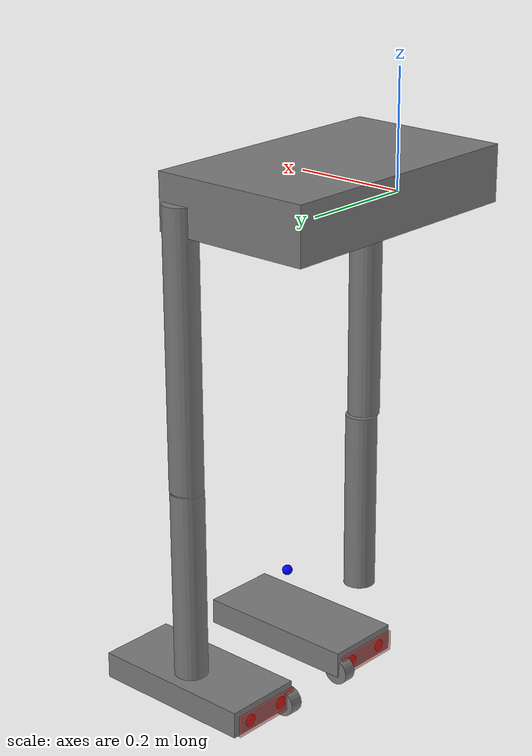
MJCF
<mujoco model="KF_NJIT_Rehab_Exo">
  <compiler angle="radian" meshdir="assets" autolimits="true"/>

  <default>
    <geom type="mesh" solimp="0.95 0.99 0.001" solref="0.005 1"/>
    <default class="visual">
      <geom group="1" type="mesh" contype="0" conaffinity="0" rgba="0.48 0.48 0.48 1"/>
    </default>
    <default class="collision">
      <geom group="0" type="box" rgba="0.8 0.2 0.2 0.5"/>
    </default>
  </default>

  <worldbody>
    <body name="base" pos="0 0 0">
      <freejoint name="root"/>

      <inertial pos="0 0 0" mass="0.01" fullinertia="1e-4 1e-4 1e-4 0 0 0"/>

      <body name="exo_pelvis" pos="0 0 0" euler="1.5707 0 0">
        <inertial pos="0.164969 -0.016465 -0.00031201" mass="3.40529" fullinertia="0.108005 0.140273 0.0409718 0.00342849 0.00011722 -6.056e-05"/>
        <geom type="box" size="0.15 0.05 0.25" pos="0.134969 -0.016465 -0.00031201" class="visual"/>

        <site name="imu" pos="0 0 0" euler="-1.5707 0 0" size="0.01" rgba="1 0 0 1"/>

        <body name="Battery" pos="0 0 0">
           <inertial pos="-0.0292753 0.0823604 -0.00041407" mass="2.2" fullinertia="0.00909547 0.00798838 0.00423978 -0.00038364 -7.94e-06 -3.83e-06"/>
        </body>

        <body name="r_exo_femur" pos="0.25 -0.06 0.21">
          <inertial pos="-0.00012287 -0.205637 0.0391034" mass="2.77725" fullinertia="0.0378701 0.00419727 0.0353309 7.8e-05 -0.00043864 -0.00038322"/>
          <joint name="r_exo_femur" axis="0 0 1" range="-1.309 1.309"/>
          <geom type="cylinder" size="0.03 0.25" pos="-0.00012287 -0.205637 0.0201034" euler="1.57 0 0" class="visual"/>

          <body name="r_exo_tibia" pos="0 -0.41 0">
            <inertial pos="0.00130324 -0.0640757 0.0163233" mass="0.60426" fullinertia="0.00549709 0.00033891 0.00532813 -4.48e-05 -6.27e-06 -0.00064841"/>
            <joint name="r_exo_tibia" axis="0 0 1" range="-2.094 0.0"/>
            <geom type="cylinder" size="0.03 0.175" pos="0.00130324 -0.2240757 0.0163233" euler="1.57 0 0" class="visual"/>

            <body name="r_shank_support" pos="0 -0.25 0">
              <inertial pos="-0.0220563 -0.0501763 -0.0332489" mass="0.24824" fullinertia="0.0009242 0.00070211 0.00054663 0.00012989 -0.00019488 0.00018796"/>

              <body name="r_ankle_coupling" pos="0 -0.129 0">
                <inertial pos="0.0270888 -0.0211255 -0.0183098" mass="0.194678" fullinertia="0.00020434 0.00086131 0.00083139 -0.00019895 -3.6e-07 -1.193e-05"/>
                <joint name="r_ankle_coupling" axis="0 0 1" range="-0.6981 0.2618"/>
                <geom type="cylinder" size="0.0254 0.0127" pos="-0.0784998 -0.1185 -0.135" class="visual"/>

                <body name="r_foot" pos="0.11 0.001 -0.0699999" euler="0 0 0.29">
                  <inertial pos="-0.0647188 -0.0863198 0.00643328" mass="1.39879" fullinertia="0.00411567 0.0161809 0.0165848 0.00314958 -0.00066379 -0.00019919"/>
                  <joint name="r_foot" axis="1 0 0" range="-0.2618 0.2618"/>
                  <geom type="box" size="0.16 0.025 0.075" pos="-0.0647188 -0.0863198 -0.00643328" euler="0 0 -0.285" class="visual"/>

                  <site name="r_foot" pos="0 0 0" size="0.01" rgba="0 0 1 1"/>

                  <body name="r_foot_ground" pos="0 -0.135 0" euler="3.14159 3.14159 2.85159">
                     <geom type="sphere" size="0.02" pos="-0.22 0.02 0.04" rgba="1 0 0 1" group="1"/>
                     <geom type="sphere" size="0.02" pos="0.06 0.02 0.04" rgba="1 0 0 1" group="1"/>
                     <geom type="sphere" size="0.02" pos="-0.22 0.02 -0.04" rgba="1 0 0 1" group="1"/>
                     <geom type="sphere" size="0.02" pos="0.06 0.02 -0.04" rgba="1 0 0 1" group="1"/>
                     <geom name="r_foot_col" type="box" size="0.16 0.02 0.07" pos="-0.08 0.02 0.0" class="collision"/>
                  </body>
                </body>
              </body>
            </body>
          </body>
        </body>

        <body name="l_exo_femur" pos="0.25 -0.06 -0.21">
          <inertial pos="-0.00012287 -0.205637 -0.0391034" mass="2.77725" fullinertia="0.0378701 0.00419727 0.0353309 7.8e-05 0.00043864 0.00038322"/>
          <joint name="l_exo_femur" axis="0 0 1" range="-1.309 1.309"/>
          <geom type="cylinder" size="0.03 0.25" pos="-0.00012287 -0.205637 -0.0291034" euler="1.57 0 0" class="visual"/>

          <body name="l_exo_tibia" pos="0 -0.41 0">
            <inertial pos="0.00130324 -0.0640757 -0.0163233" mass="0.60426" fullinertia="0.00549709 0.00033891 0.00532813 -4.48e-05 6.27e-06 0.00064841"/>
            <joint name="l_exo_tibia" axis="0 0 1" range="-2.094 0.0"/>
            <geom type="cylinder" size="0.03 0.175" pos="0.00130324 -0.2240757 -0.0263233" euler="1.57 0 0" class="visual"/>

            <body name="l_shank_support" pos="0 -0.25 0">
              <inertial pos="-0.0220563 -0.0501763 0.0332489" mass="0.24824" fullinertia="0.0009242 0.00070211 0.00054663 0.00012989 0.00019488 -0.00018796"/>

              <body name="l_ankle_coupling" pos="0 -0.129 0">
                <inertial pos="0.0270888 -0.0211255 0.0183098" mass="0.194678" fullinertia="0.00020434 0.00086131 0.00083139 -0.00019895 3.6e-07 1.193e-05"/>
                <joint name="l_ankle_coupling" axis="0 0 1" range="-0.6981 0.2618"/>
                <geom type="cylinder" size="0.0254 0.0127" pos="-0.0784998 -0.1185 0.135" class="visual"/>

                <body name="l_foot" pos="0.11 0.001 0.0699999" euler="0 0 0.29">
                  <inertial pos="-0.0647188 -0.0863198 -0.00643328" mass="1.39879" fullinertia="0.00411567 0.0161809 0.0165848 0.00314958 0.00066379 0.00019919"/>
                  <joint name="l_foot" axis="-1 0 0" range="-0.2618 0.2618"/>
                  <geom type="box" size="0.16 0.025 0.075" pos="-0.0647188 -0.0863198 -0.00643328" euler="0 0 -0.285" class="visual"/>

                  <site name="l_foot" pos="0 0 0" size="0.01" rgba="0 0 1 1"/>

                  <body name="l_foot_ground" pos="0 -0.135 0" euler="3.14159 3.14159 2.85159">
                     <geom type="sphere" size="0.02" pos="-0.22 0.02 0.04" rgba="1 0 0 1" group="1"/>
                     <geom type="sphere" size="0.02" pos="0.06 0.02 0.04" rgba="1 0 0 1" group="1"/>
                     <geom type="sphere" size="0.02" pos="-0.22 0.02 -0.04" rgba="1 0 0 1" group="1"/>
                     <geom type="sphere" size="0.02" pos="0.06 0.02 -0.04" rgba="1 0 0 1" group="1"/>
                     <geom name="l_foot_col" type="box" size="0.16 0.02 0.07" pos="-0.08 0.02 0.0" class="collision"/>
                  </body>
                </body>
              </body>
            </body>
          </body>
        </body>

      </body>
    </body>
  </worldbody>

  <actuator>
    <position name="r_hip" joint="r_exo_femur" kp="50" ctrllimited="true" ctrlrange="-1.3 1.3"/>
    <position name="l_hip" joint="l_exo_femur" kp="50" ctrllimited="true" ctrlrange="-1.3 1.3"/>
    <position name="r_knee" joint="r_exo_tibia" kp="50" ctrllimited="true" ctrlrange="-2.0 0"/>
    <position name="l_knee" joint="l_exo_tibia" kp="50" ctrllimited="true" ctrlrange="-2.0 0"/>
    <position name="r_ankle" joint="r_ankle_coupling" kp="30" ctrllimited="true" ctrlrange="-0.7 0.3"/>
    <position name="l_ankle" joint="l_ankle_coupling" kp="30" ctrllimited="true" ctrlrange="-0.7 0.3"/>
    <position name="r_toe" joint="r_foot" kp="20" ctrllimited="true" ctrlrange="-0.3 0.3"/>
    <position name="l_toe" joint="l_foot" kp="20" ctrllimited="true" ctrlrange="-0.3 0.3"/>
  </actuator>

<sensor>
    <accelerometer name="accelerometer" site="imu"/>
    <gyro name="gyro" site="imu"/>
    <framezaxis name="upvector" objtype="site" objname="imu"/>

    <velocimeter name="local_linvel" site="imu"/>
    <framelinvel name="global_linvel" objtype="site" objname="imu"/>
    <frameangvel name="global_angvel" objtype="site" objname="imu"/>

    <velocimeter name="l_foot_global_linvel" site="l_foot"/>
    <velocimeter name="r_foot_global_linvel" site="r_foot"/>
</sensor>

</mujoco>
